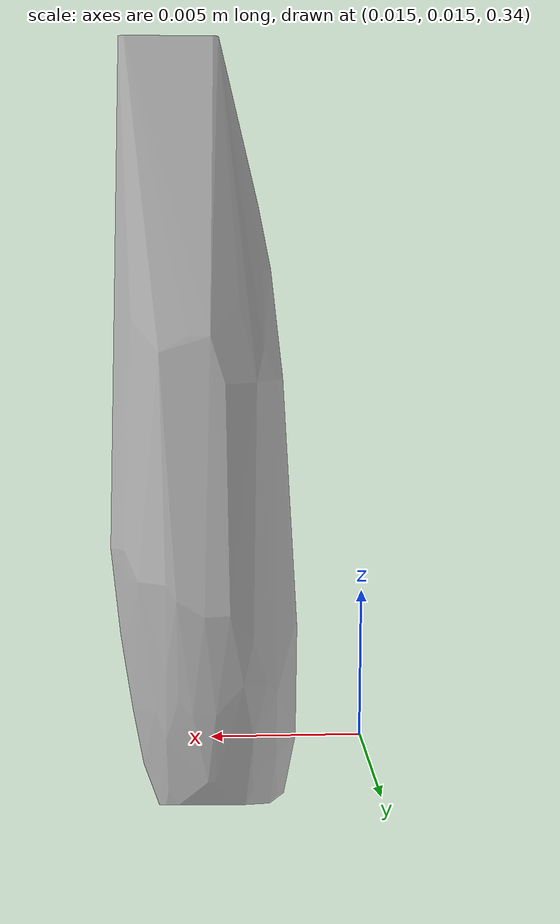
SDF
<?xml version="1.0"?>
<sdf version="1.7">
  <model name="vascular_partexport045">
    <link name="vascular_partexport045_body">
      <visual name="vascular_partexport045_visual">
        <geometry>
          <mesh>
            <uri>vascular_partexport045.obj</uri>
          </mesh>
        </geometry>
      </visual>
      <collision name="vascular_partexport045_collision">
        <geometry>
          <mesh>
            <uri>vascular_partexport045.obj</uri>
          </mesh>
        </geometry>
      </collision>
    </link>
    <frame name="vascular_partexport045_center">
      <pose relative_to="vascular_partexport045_body">0 0 0 0 0 0</pose>
    </frame>
  </model>
</sdf>
